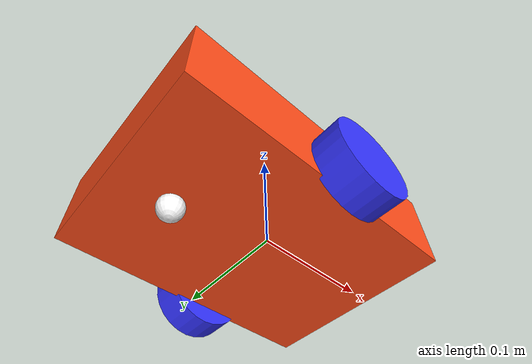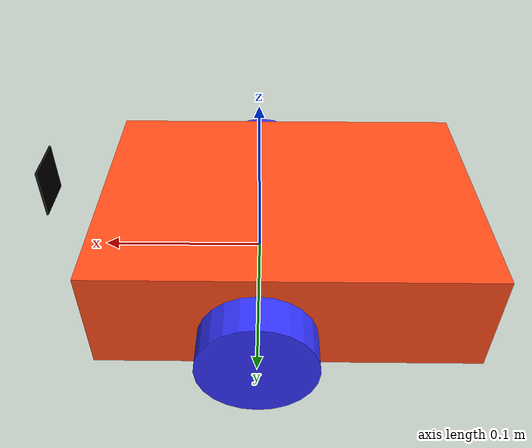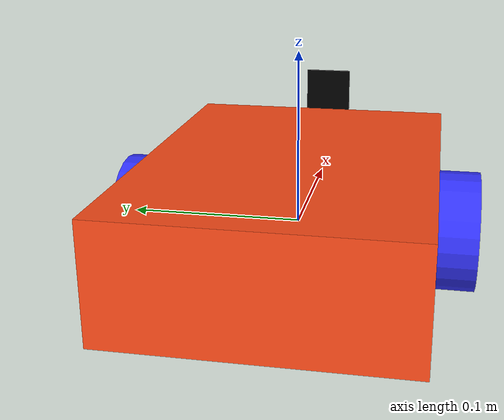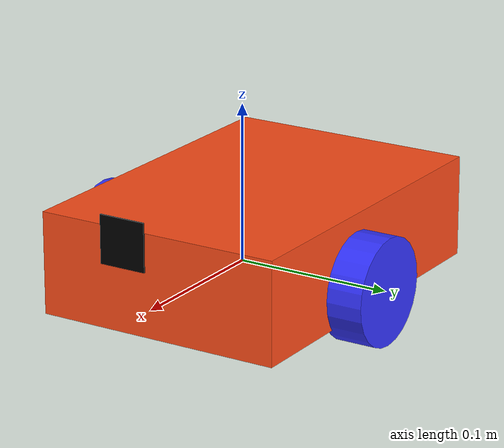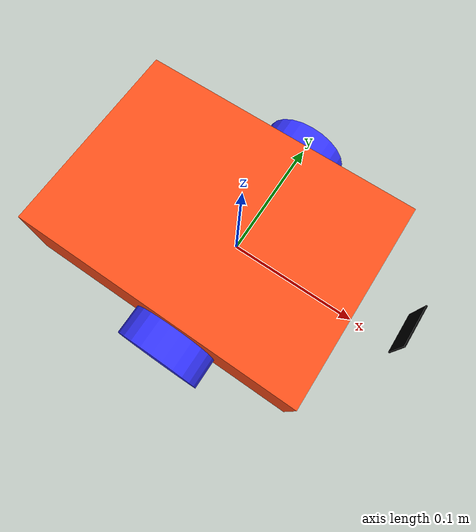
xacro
<?xml version="1.0"?>
<robot xmlns:xacro="http://www.ros.org/wiki/xacro" >

    <xacro:include filename="inertial_macros.xacro"/>

    <!-- Define camera tilt angle -->
    <xacro:property name="camera_tilt_angle" value="0.0"/>

    <xacro:property name="chassis_length" value="0.225"/>
    <xacro:property name="chassis_width" value="0.160"/>
    <xacro:property name="chassis_height" value="0.065"/>
    <xacro:property name="chassis_mass" value="1.0"/>
    <xacro:property name="wheel_radius" value="0.034"/>
    <xacro:property name="wheel_thickness" value="0.026"/>
    <xacro:property name="wheel_mass" value="0.05"/>
    <xacro:property name="wheel_offset_x" value="0.130"/>
    <xacro:property name="wheel_offset_y" value="0.090"/>
    <xacro:property name="wheel_offset_z" value="0.02"/>
    <xacro:property name="caster_wheel_radius" value="0.01"/>
    <xacro:property name="caster_wheel_mass" value="0.01"/>
    <xacro:property name="caster_wheel_offset_x" value="0.045"/>
    <xacro:property name="caster_wheel_offset_z" value="${wheel_offset_z - wheel_radius + caster_wheel_radius}"/>

    <!-- Define camera tilt limits -->
    <xacro:property name="max_camera_tilt" value="1.57"/> <!-- Maximum tilt angle in radians -->
    <xacro:property name="min_camera_tilt" value="-1.57"/> <!-- Minimum tilt angle in radians -->

    <material name="white">
        <color rgba="1 1 1 1" />
    </material>

    <material name="orange">
        <color rgba="1 0.3 0.1 1"/>
    </material>

    <material name="blue">
        <color rgba="0.2 0.2 1 1"/>
    </material>

    <material name="black">
        <color rgba="0 0 0 1"/>
    </material>

    <material name="red">
        <color rgba="1 0 0 1"/>
    </material>

    <!-- BASE LINK -->

    <link name="base_link">

    </link>

    <!-- BASE_FOOTPRINT LINK -->

    <joint name="base_footprint_joint" type="fixed">
        <parent link="base_link"/>
        <child link="base_footprint"/>
        <origin xyz="0 0 0" rpy="0 0 0"/>
    </joint>

    <link name="base_footprint">
    </link>

    <!-- CHASSIS LINK -->

    <joint name="chassis_joint" type="fixed">
        <parent link="base_link"/>
        <child link="chassis"/>
        <origin xyz="${-wheel_offset_x} 0 ${-wheel_offset_z}"/>
    </joint>

    <link name="chassis">
        <visual>
            <origin xyz="${chassis_length/2} 0 ${chassis_height/2}"/>
            <geometry>
                <box size="${chassis_length} ${chassis_width} ${chassis_height}"/>
            </geometry>
            <material name="orange"/>
        </visual>
        <collision>
            <origin xyz="${chassis_length/2} 0 ${chassis_height/2}"/>
            <geometry>
                <box size="${chassis_length} ${chassis_width} ${chassis_height}"/>
            </geometry>
        </collision>
        <xacro:inertial_box mass="0.5" x="${chassis_length}" y="${chassis_width}" z="${chassis_height}">
            <origin xyz="${chassis_length/2} 0 ${chassis_height/2}" rpy="0 0 0"/>
        </xacro:inertial_box>
    </link>

    <!-- Add camera joint for tilting -->
    <joint name="camera_tilt_joint" type="continuous">
        <parent link="chassis"/>
        <child link="camera_tilt_link"/>
        <origin xyz="0.257 0 0.070" rpy="0 0 ${camera_tilt_angle}"/>
        <axis xyz="0 0 1"/>
    </joint>

    <link name="camera_tilt_link">
        <visual>
            <geometry>
                <box size="0.001 0.03 0.03"/>
            </geometry>
            <material name="black"/>
        </visual>
    </link>

    <!-- LEFT WHEEL LINK -->

    <joint name="left_wheel_joint" type="continuous">
        <parent link="base_link"/>
        <child link="left_wheel"/>
        <origin xyz="0 ${wheel_offset_y} 0" rpy="-${pi/2} 0 0" />
        <axis xyz="0 0 1"/>
    </joint>

    <link name="left_wheel">
        <visual>
            <geometry>
                <cylinder radius="${wheel_radius}" length="${wheel_thickness}"/>
            </geometry>
            <material name="blue"/>
        </visual>
        <collision>
            <geometry>
                <sphere radius="${wheel_radius}"/>
            </geometry>
        </collision>
        <xacro:inertial_cylinder mass="${wheel_mass}" length="${wheel_thickness}" radius="${wheel_radius}">
            <origin xyz="0 0 0" rpy="0 0 0"/>
        </xacro:inertial_cylinder>
    </link>

    <gazebo reference="left_wheel">
        <material>Gazebo/Blue</material>
    </gazebo>

    <!-- RIGHT WHEEL LINK -->

    <joint name="right_wheel_joint" type="continuous">
        <parent link="base_link"/>
        <child link="right_wheel"/>
        <origin xyz="0 ${-wheel_offset_y} 0" rpy="${pi/2} 0 0" />
        <axis xyz="0 0 -1"/>
    </joint>

    <link name="right_wheel">
        <visual>
            <geometry>
                <cylinder radius="${wheel_radius}" length="${wheel_thickness}"/>
            </geometry>
            <material name="blue"/>
        </visual>
        <collision>
            <geometry>
                <sphere radius="${wheel_radius}"/>
            </geometry>
        </collision>
        <xacro:inertial_cylinder mass="${wheel_mass}" length="${wheel_thickness}" radius="${wheel_radius}">
            <origin xyz="0 0 0" rpy="0 0 0"/>
        </xacro:inertial_cylinder>
    </link>

    <gazebo reference="right_wheel">
        <material>Gazebo/Blue</material>
    </gazebo>

    <!-- CASTER WHEEL LINK -->

    <joint name="caster_wheel_joint" type="fixed">
        <parent link="chassis"/>
        <child link="caster_wheel"/>
        <origin xyz="${caster_wheel_offset_x} 0 ${caster_wheel_offset_z}"/>
    </joint>

    <link name="caster_wheel">
        <visual>
            <geometry>
                <sphere radius="${caster_wheel_radius}"/>
            </geometry>
            <material name="white"/>
        </visual>
        <collision>
            <geometry>
                <sphere radius="${caster_wheel_radius}"/>
            </geometry>
        </collision>
        <xacro:inertial_sphere mass="${caster_wheel_mass}" radius="${caster_wheel_radius}">
            <origin xyz="0 0 0" rpy="0 0 0"/>
        </xacro:inertial_sphere>
    </link>

    <gazebo reference="caster_wheel">
        <material>Gazebo/White</material>
        <mu1 value="0.001"/>
        <mu2 value="0.001"/>
    </gazebo>

</robot>
